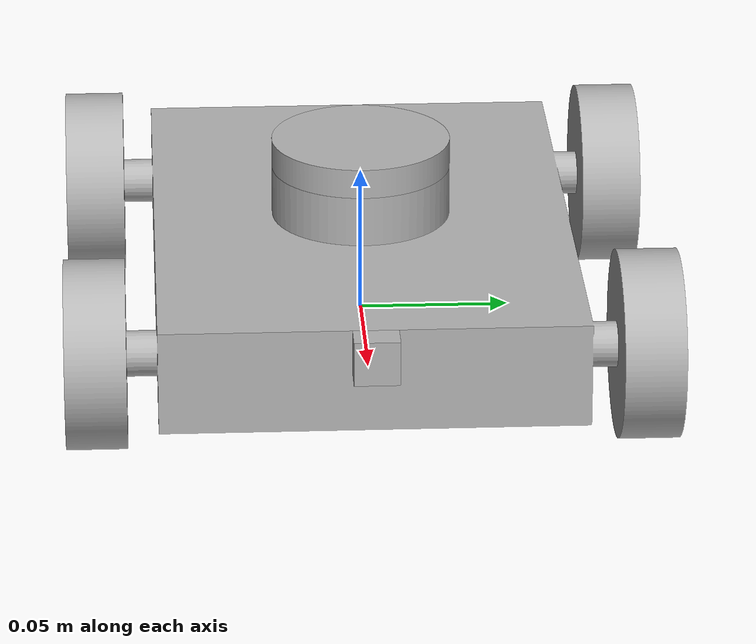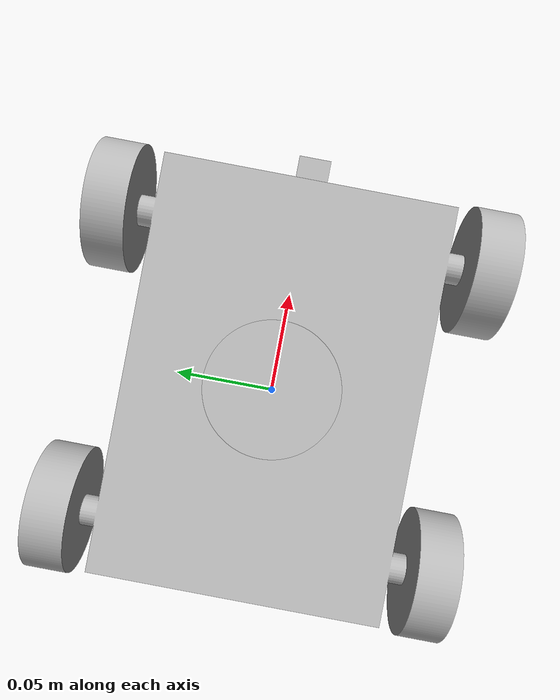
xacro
<?xml version="1.0" ?>
<robot name="samplebot" xmlns:xacro="http://www.ros.org/wiki/xacro">

<xacro:include filename="$(find samplebot_description)/urdf/materials.xacro" />
<xacro:include filename="$(find samplebot_description)/urdf/samplebot.trans" />
<xacro:include filename="$(find samplebot_description)/urdf/samplebot.gazebo" />
<link name="base_link">
  <inertial>
    <origin xyz="0.0 0.0 0.01870730688912165" rpy="0 0 0"/>
    <mass value="8.12580936590343"/>
    <inertia ixx="0.014001" iyy="0.02708" izz="0.039004" ixy="0.0" iyz="-0.0" ixz="0.0"/>
  </inertial>
  <visual>
    <origin xyz="0 0 0" rpy="0 0 0"/>
    <geometry>
      <mesh filename="file://$(find samplebot_description)/meshes/base_link.stl" scale="0.001 0.001 0.001"/>
    </geometry>
    <material name="silver"/>
  </visual>
  <collision>
    <origin xyz="0 0 0" rpy="0 0 0"/>
    <geometry>
      <mesh filename="file://$(find samplebot_description)/meshes/base_link.stl" scale="0.001 0.001 0.001"/>
    </geometry>
  </collision>
</link>

<link name="lidar_1">
  <inertial>
    <origin xyz="5.026061718855929e-18 0.0 0.005000000000000011" rpy="0 0 0"/>
    <mass value="0.2219535209761188"/>
    <inertia ixx="5.2e-05" iyy="5.2e-05" izz="0.0001" ixy="0.0" iyz="0.0" ixz="0.0"/>
  </inertial>
  <visual>
    <origin xyz="-0.0 -0.0 -0.052" rpy="0 0 0"/>
    <geometry>
      <mesh filename="file://$(find samplebot_description)/meshes/lidar_1.stl" scale="0.001 0.001 0.001"/>
    </geometry>
    <material name="silver"/>
  </visual>
  <collision>
    <origin xyz="-0.0 -0.0 -0.052" rpy="0 0 0"/>
    <geometry>
      <mesh filename="file://$(find samplebot_description)/meshes/lidar_1.stl" scale="0.001 0.001 0.001"/>
    </geometry>
  </collision>
</link>

<link name="right_frontw_1">
  <inertial>
    <origin xyz="0.0 -0.010000000000000023 0.0" rpy="0 0 0"/>
    <mass value="0.4739940747956673"/>
    <inertia ixx="0.00013" iyy="0.000228" izz="0.00013" ixy="-0.0" iyz="-0.0" ixz="0.0"/>
  </inertial>
  <visual>
    <origin xyz="-0.075 0.08 -0.0175" rpy="0 0 0"/>
    <geometry>
      <mesh filename="file://$(find samplebot_description)/meshes/right_frontw_1.stl" scale="0.001 0.001 0.001"/>
    </geometry>
    <material name="silver"/>
  </visual>
  <collision>
    <origin xyz="-0.075 0.08 -0.0175" rpy="0 0 0"/>
    <geometry>
      <mesh filename="file://$(find samplebot_description)/meshes/right_frontw_1.stl" scale="0.001 0.001 0.001"/>
    </geometry>
  </collision>
</link>

<link name="left_frontw_1">
  <inertial>
    <origin xyz="0.0 0.009999999999999995 0.0" rpy="0 0 0"/>
    <mass value="0.4739940747956673"/>
    <inertia ixx="0.00013" iyy="0.000228" izz="0.00013" ixy="-0.0" iyz="0.0" ixz="0.0"/>
  </inertial>
  <visual>
    <origin xyz="-0.075 -0.08 -0.0175" rpy="0 0 0"/>
    <geometry>
      <mesh filename="file://$(find samplebot_description)/meshes/left_frontw_1.stl" scale="0.001 0.001 0.001"/>
    </geometry>
    <material name="silver"/>
  </visual>
  <collision>
    <origin xyz="-0.075 -0.08 -0.0175" rpy="0 0 0"/>
    <geometry>
      <mesh filename="file://$(find samplebot_description)/meshes/left_frontw_1.stl" scale="0.001 0.001 0.001"/>
    </geometry>
  </collision>
</link>

<link name="right_rearw_1">
  <inertial>
    <origin xyz="0.0 -0.010000000000000023 0.0" rpy="0 0 0"/>
    <mass value="0.4739940747956673"/>
    <inertia ixx="0.00013" iyy="0.000228" izz="0.00013" ixy="0.0" iyz="-0.0" ixz="0.0"/>
  </inertial>
  <visual>
    <origin xyz="0.075 0.08 -0.0175" rpy="0 0 0"/>
    <geometry>
      <mesh filename="file://$(find samplebot_description)/meshes/right_rearw_1.stl" scale="0.001 0.001 0.001"/>
    </geometry>
    <material name="silver"/>
  </visual>
  <collision>
    <origin xyz="0.075 0.08 -0.0175" rpy="0 0 0"/>
    <geometry>
      <mesh filename="file://$(find samplebot_description)/meshes/right_rearw_1.stl" scale="0.001 0.001 0.001"/>
    </geometry>
  </collision>
</link>

<link name="left_rearw_1">
  <inertial>
    <origin xyz="0.0 0.009999999999999995 0.0" rpy="0 0 0"/>
    <mass value="0.4739940747956673"/>
    <inertia ixx="0.00013" iyy="0.000228" izz="0.00013" ixy="0.0" iyz="0.0" ixz="0.0"/>
  </inertial>
  <visual>
    <origin xyz="0.075 -0.08 -0.0175" rpy="0 0 0"/>
    <geometry>
      <mesh filename="file://$(find samplebot_description)/meshes/left_rearw_1.stl" scale="0.001 0.001 0.001"/>
    </geometry>
    <material name="silver"/>
  </visual>
  <collision>
    <origin xyz="0.075 -0.08 -0.0175" rpy="0 0 0"/>
    <geometry>
      <mesh filename="file://$(find samplebot_description)/meshes/left_rearw_1.stl" scale="0.001 0.001 0.001"/>
    </geometry>
  </collision>
</link>

<link name="camera_1">
  <inertial>
    <origin xyz="0.0049999999999999906 5.585809592645319e-17 0.009999999999999988" rpy="0 0 0"/>
    <mass value="0.0176625"/>
    <inertia ixx="1e-06" iyy="0.0" izz="0.0" ixy="-0.0" iyz="-0.0" ixz="0.0"/>
  </inertial>
  <visual>
    <origin xyz="-0.1 -0.0 -0.0175" rpy="0 0 0"/>
    <geometry>
      <mesh filename="file://$(find samplebot_description)/meshes/camera_1.stl" scale="0.001 0.001 0.001"/>
    </geometry>
    <material name="silver"/>
  </visual>
  <collision>
    <origin xyz="-0.1 -0.0 -0.0175" rpy="0 0 0"/>
    <geometry>
      <mesh filename="file://$(find samplebot_description)/meshes/camera_1.stl" scale="0.001 0.001 0.001"/>
    </geometry>
  </collision>
</link>

<joint name=" lidarjoint" type="fixed">
  <origin xyz="0.0 0.0 0.052" rpy="0 0 0"/>
  <parent link="base_link"/>
  <child link="lidar_1"/>
</joint>

<joint name="front_rightjoint" type="continuous">
  <origin xyz="0.075 -0.08 0.0175" rpy="0 0 0"/>
  <parent link="base_link"/>
  <child link="right_frontw_1"/>
  <axis xyz="0.0 -1.0 0.0"/>
</joint>

<joint name="front_leftjoint" type="continuous">
  <origin xyz="0.075 0.08 0.0175" rpy="0 0 0"/>
  <parent link="base_link"/>
  <child link="left_frontw_1"/>
  <axis xyz="0.0 1.0 0.0"/>
</joint>

<joint name="rear_rightjoint" type="continuous">
  <origin xyz="-0.075 -0.08 0.0175" rpy="0 0 0"/>
  <parent link="base_link"/>
  <child link="right_rearw_1"/>
  <axis xyz="0.0 -1.0 0.0"/>
</joint>

<joint name="rear_leftjoint" type="continuous">
  <origin xyz="-0.075 0.08 0.0175" rpy="0 0 0"/>
  <parent link="base_link"/>
  <child link="left_rearw_1"/>
  <axis xyz="0.0 1.0 0.0"/>
</joint>

<joint name="camerajoint" type="fixed">
  <origin xyz="0.1 0.0 0.0175" rpy="0 0 0"/>
  <parent link="base_link"/>
  <child link="camera_1"/>
</joint>

</robot>

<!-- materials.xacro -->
<robot name="samplebot" xmlns:xacro="http://www.ros.org/wiki/xacro" >

<material name="silver">
  <color rgba="0.700 0.700 0.700 1.000"/>
</material>

</robot>

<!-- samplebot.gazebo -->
<robot name="samplebot" xmlns:xacro="http://www.ros.org/wiki/xacro" >

<xacro:property name="body_color" value="Gazebo/Silver" />

<gazebo>
  <plugin name="control" filename="libgazebo_ros_control.so"/>
</gazebo>
<gazebo reference="base_link">
  <material>${body_color}</material>
  <mu1>0.2</mu1>
  <mu2>0.2</mu2>
  <self_collide>true</self_collide>
  <gravity>true</gravity>
</gazebo>

<gazebo reference="lidar_1">
  <material>${body_color}</material>
  <mu1>0.2</mu1>
  <mu2>0.2</mu2>
  <self_collide>true</self_collide>
</gazebo>

<gazebo reference="right_frontw_1">
  <material>${body_color}</material>
  <mu1>0.05</mu1>
  <mu2>0.05</mu2>
  <self_collide>true</self_collide>
</gazebo>

<gazebo reference="left_frontw_1">
  <material>${body_color}</material>
  <mu1>0.05</mu1>
  <mu2>0.05</mu2>
  <self_collide>true</self_collide>
</gazebo>

<gazebo reference="right_rearw_1">
  <material>${body_color}</material>
  <mu1>0.05</mu1>
  <mu2>0.05</mu2>
  <self_collide>true</self_collide>
</gazebo>

<gazebo reference="left_rearw_1">
  <material>${body_color}</material>
  <mu1>0.05</mu1>
  <mu2>0.05</mu2>
  <self_collide>true</self_collide>
</gazebo>

<gazebo reference="camera_1">
  <material>${body_color}</material>
  <mu1>0.2</mu1>
  <mu2>0.2</mu2>
  <self_collide>true</self_collide>
</gazebo>

<gazebo reference="lidar_1">
	<sensor name="ydlidar" type="ray">
		<always_on>true</always_on>
		<visualize>true</visualize>
		<update_rate>10</update_rate>
		<ray>
		<scan>
			<horizontal>
			<samples>720</samples>
			<resolution>1.000000</resolution>
			<min_angle>-3.14</min_angle>
			<max_angle>3.14</max_angle>
			</horizontal>
		</scan>
		<range>
			<min>0.05</min>
			<max>6.0</max>
			<resolution>0.015000</resolution>
		</range>
		<noise>
			<type>gaussian</type>
			<mean>0.0</mean>
			<stddev>0.01</stddev>
		</noise>
		</ray>
		<plugin name="scan" filename="libgazebo_ros_ray_sensor.so">
		<ros>
			<remapping>~/out:=scan</remapping>
		</ros>
		<output_type>sensor_msgs/LaserScan</output_type>
		<frame_name>lidar_1</frame_name>
		</plugin>
	</sensor>
	</gazebo>

    <gazebo>
        <plugin name="object_controller" filename="libgazebo_ros_planar_move.so">
            <commandTopic>cmd_vel</commandTopic>
            <odometryTopic>odom</odometryTopic>
            <odometryRate>20.0</odometryRate>
            <robotBaseFrame>base_link</robotBaseFrame>

            <!-- Wheel Information -->
            <left_joint>front_leftjoint</left_joint>
            <left_joint>rear_leftjoint</left_joint>
            <right_joint>front_rightjoint</right_joint>
            <right_joint>rear_rightjoint</right_joint>
            <wheel_separation>0.16</wheel_separation>
            <wheel_diameter>0.062</wheel_diameter>

            <!-- Limits -->
            <max_wheel_torque>200</max_wheel_torque>
            <max_wheel_acceleration>10.0</max_wheel_acceleration>

            <!-- Output -->
            <odometry_frame>odom</odometry_frame>
            <robot_base_frame>base_link</robot_base_frame>
            <publish_TF>true</publish_TF>

            <publish_odom>true</publish_odom>
            <publish_odom_tf>true</publish_odom_tf>
            <publish_wheel_tf>true</publish_wheel_tf>

        </plugin>

    </gazebo>

<gazebo reference="camera_1">
    <sensor type="camera" name="camera">
      <update_rate>30.0</update_rate>
      <camera name="head">
        <horizontal_fov>1.3962634</horizontal_fov>
        <image>
          <width>800</width>
          <height>800</height>
          <format>R8G8B8</format>
        </image>
        <clip>
          <near>0.02</near>
          <far>300</far>
        </clip>
        <noise>
          <type>gaussian</type>
          <!-- Noise is sampled independently per pixel on each frame.
               That pixel's noise value is added to each of its color
               channels, which at that point lie in the range [0,1]. -->
          <mean>0.0</mean>
          <stddev>0.007</stddev>
        </noise>
      </camera>
      <plugin name="camera_controller" filename="libgazebo_ros_camera.so">
        <alwaysOn>true</alwaysOn>
        <updateRate>0.0</updateRate>
        <cameraName>camera</cameraName>
        <imageTopicName>image_raw</imageTopicName>
        <cameraInfoTopicName>camera_info</cameraInfoTopicName>
        <frameName>camera_frame</frameName>
        <hackBaseline>0.07</hackBaseline>
        <distortionK1>0.0</distortionK1>
        <distortionK2>0.0</distortionK2>
        <distortionK3>0.0</distortionK3>
        <distortionT1>0.0</distortionT1>
        <distortionT2>0.0</distortionT2>
      </plugin>
    </sensor>
</gazebo>

</robot>
